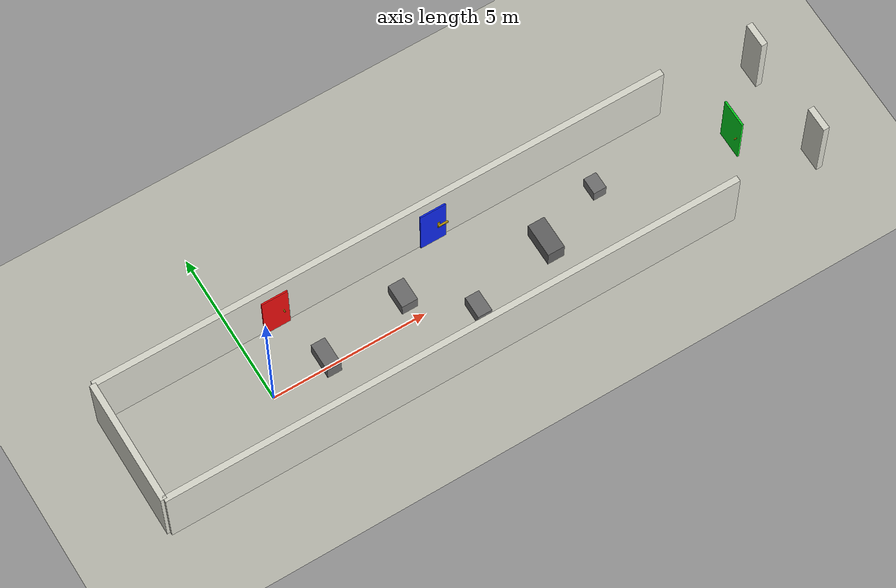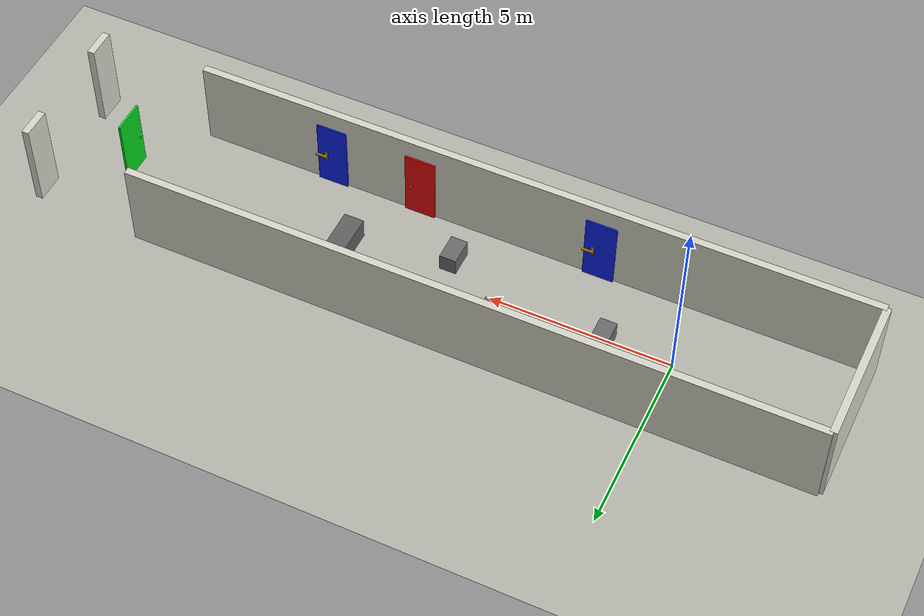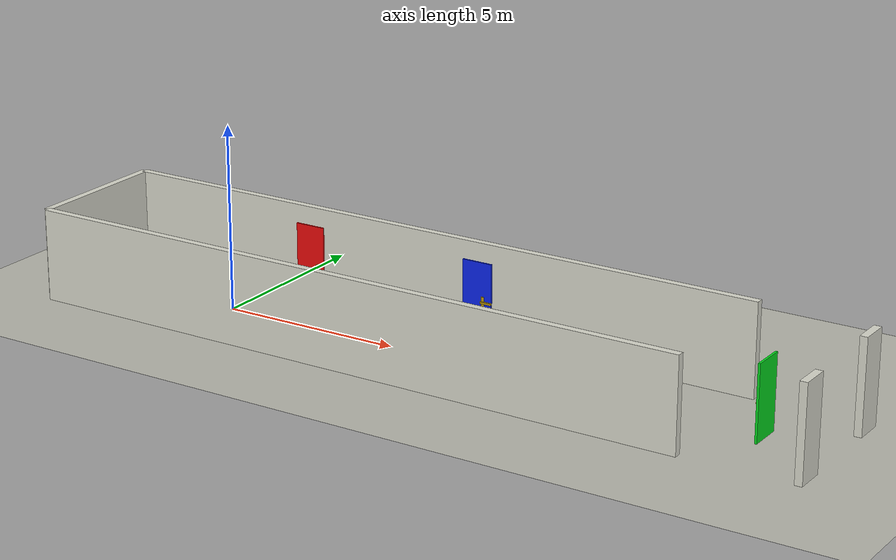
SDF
<?xml version="1.0" ?>
<sdf version="1.6">
  <world name="fire_corridor_observation_stress">
    <physics name="default_physics" type="ode">
      <max_step_size>0.001</max_step_size>
      <real_time_update_rate>1000</real_time_update_rate>
    </physics>
    <plugin name="gz::sim::systems::Physics" filename="gz-sim-physics-system"/>
    <plugin name="gz::sim::systems::UserCommands" filename="gz-sim-user-commands-system"/>
    <plugin name="gz::sim::systems::SceneBroadcaster" filename="gz-sim-scene-broadcaster-system"/>
    <plugin name="gz::sim::systems::Sensors" filename="gz-sim-sensors-system">
      <render_engine>ogre2</render_engine>
    </plugin>

    <light type="directional" name="sun">
      <cast_shadows>true</cast_shadows>
      <pose>5 0 10 0 0 0</pose>
      <diffuse>0.9 0.9 0.9 1</diffuse>
      <specular>0.3 0.3 0.3 1</specular>
      <direction>-0.5 0.1 -1</direction>
    </light>
    <light type="point" name="light_mid">
      <pose>7.2 0 2.8 0 0 0</pose>
      <diffuse>0.8 0.8 0.8 1</diffuse>
      <specular>0.1 0.1 0.1 1</specular>
      <attenuation>
        <range>14</range>
        <linear>0.05</linear>
      </attenuation>
    </light>

    <model name="ground_plane">
      <static>true</static>
      <link name="link">
        <collision name="col">
          <geometry><plane><normal>0 0 1</normal><size>42 10</size></plane></geometry>
        </collision>
        <visual name="vis">
          <geometry><plane><normal>0 0 1</normal><size>42 10</size></plane></geometry>
          <material>
            <ambient>0.72 0.72 0.68 1</ambient>
            <diffuse>0.72 0.72 0.68 1</diffuse>
          </material>
        </visual>
      </link>
    </model>

    <model name="wall_south">
      <static>true</static>
      <pose>4.85 -2.00 1.25 0 0 0</pose>
      <link name="link">
        <collision name="col"><geometry><box><size>18.700 0.200 2.500</size></box></geometry></collision>
        <visual name="vis">
          <geometry><box><size>18.700 0.200 2.500</size></box></geometry>
          <material><ambient>0.85 0.85 0.80 1</ambient><diffuse>0.85 0.85 0.80 1</diffuse></material>
        </visual>
      </link>
    </model>
    <model name="wall_north">
      <static>true</static>
      <pose>4.85 2.00 1.25 0 0 0</pose>
      <link name="link">
        <collision name="col"><geometry><box><size>18.700 0.200 2.500</size></box></geometry></collision>
        <visual name="vis">
          <geometry><box><size>18.700 0.200 2.500</size></box></geometry>
          <material><ambient>0.85 0.85 0.80 1</ambient><diffuse>0.85 0.85 0.80 1</diffuse></material>
        </visual>
      </link>
    </model>
    <model name="wall_west">
      <static>true</static>
      <pose>-4.50 0.00 1.25 0 0 0</pose>
      <link name="link">
        <collision name="col"><geometry><box><size>0.200 4.000 2.500</size></box></geometry></collision>
        <visual name="vis">
          <geometry><box><size>0.200 4.000 2.500</size></box></geometry>
          <material><ambient>0.85 0.85 0.80 1</ambient><diffuse>0.85 0.85 0.80 1</diffuse></material>
        </visual>
      </link>
    </model>
    <model name="wall_east_upper">
      <static>true</static>
      <pose>17.20 1.60 1.25 0 0 0</pose>
      <link name="link">
        <collision name="col"><geometry><box><size>0.200 0.800 2.500</size></box></geometry></collision>
        <visual name="vis">
          <geometry><box><size>0.200 0.800 2.500</size></box></geometry>
          <material><ambient>0.85 0.85 0.80 1</ambient><diffuse>0.85 0.85 0.80 1</diffuse></material>
        </visual>
      </link>
    </model>
    <model name="wall_east_lower">
      <static>true</static>
      <pose>17.20 -1.60 1.25 0 0 0</pose>
      <link name="link">
        <collision name="col"><geometry><box><size>0.200 0.800 2.500</size></box></geometry></collision>
        <visual name="vis">
          <geometry><box><size>0.200 0.800 2.500</size></box></geometry>
          <material><ambient>0.85 0.85 0.80 1</ambient><diffuse>0.85 0.85 0.80 1</diffuse></material>
        </visual>
      </link>
    </model>

    <model name="door_red_quick">
      <static>true</static>
      <pose>1.20 1.86 1.0 0 0 0</pose>
      <link name="link">
        <visual name="panel">
          <geometry><box><size>0.85 0.045 2.0</size></box></geometry>
          <material><ambient>0.92 0.04 0.04 1</ambient><diffuse>0.92 0.04 0.04 1</diffuse></material>
        </visual>
      </link>
    </model>
    <model name="handle_red_quick">
      <static>true</static>
      <pose>1.44 1.82 0.95 1.5708 0 0</pose>
      <link name="link">
        <visual name="handle">
          <geometry><cylinder><radius>0.018</radius><length>0.13</length></cylinder></geometry>
          <material><ambient>0.75 0.60 0.05 1</ambient><diffuse>0.75 0.60 0.05 1</diffuse></material>
        </visual>
      </link>
    </model>

    <model name="door_blue_quick1">
      <static>false</static>
      <pose>2.80 -1.86 1 0 0 0</pose>
      <link name="panel">
        <inertial>
          <mass>2.0</mass>
          <inertia>
            <ixx>0.90</ixx><ixy>0</ixy><ixz>0</ixz>
            <iyy>0.90</iyy><iyz>0</iyz><izz>0.12</izz>
          </inertia>
        </inertial>
        <collision name="panel_collision">
          <geometry><box><size>0.85 0.045 2</size></box></geometry>
          <surface><friction><ode><mu>0.8</mu><mu2>0.8</mu2></ode></friction></surface>
        </collision>
        <visual name="panel">
          <geometry><box><size>0.85 0.045 2</size></box></geometry>
          <material><ambient>0.04 0.14 0.92 1</ambient><diffuse>0.04 0.14 0.92 1</diffuse></material>
        </visual>
        <collision name="handle_collision">
<pose>0.3 0.074 -0.05 0 0 0</pose>
<geometry><box><size>0.32 0.07 0.055</size></box></geometry>
        </collision>
        <visual name="handle_backplate">
<pose>0.18 0.032 -0.05 0 0 0</pose>
<geometry><box><size>0.08 0.022 0.28</size></box></geometry>
<material><ambient>0.75 0.60 0.05 1</ambient><diffuse>0.75 0.60 0.05 1</diffuse></material>
        </visual>
        <visual name="handle">
<pose>0.3 0.078 -0.05 0 0 0</pose>
<geometry><box><size>0.32 0.052 0.052</size></box></geometry>
<material><ambient>0.75 0.60 0.05 1</ambient><diffuse>0.75 0.60 0.05 1</diffuse></material>
        </visual>
      </link>
      <joint name="hinge" type="revolute">
        <pose>-0.425 0 0 0 0 0</pose>
        <parent>world</parent>
        <child>panel</child>
        <axis>
          <xyz>0 0 1</xyz>
          <limit><lower>-2.10</lower><upper>2.10</upper><effort>40</effort><velocity>1.5</velocity></limit>
          <dynamics><damping>1.0</damping><friction>0.05</friction></dynamics>
        </axis>
      </joint>
      <plugin filename="ignition-gazebo-joint-position-controller-system"
              name="gz::sim::systems::JointPositionController">
        <joint_name>hinge</joint_name>
        <topic>/fire_robot/door/blue/x280/yn186/sp/cmd</topic>
        <p_gain>8.0</p_gain>
        <d_gain>0.4</d_gain>
        <cmd_max>60</cmd_max>
        <cmd_min>-60</cmd_min>
      </plugin>
    </model>

    <model name="door_blue_quick2">
      <static>false</static>
      <pose>6.40 1.86 1 0 0 0</pose>
      <link name="panel">
        <inertial>
          <mass>2.0</mass>
          <inertia>
            <ixx>0.90</ixx><ixy>0</ixy><ixz>0</ixz>
            <iyy>0.90</iyy><iyz>0</iyz><izz>0.12</izz>
          </inertia>
        </inertial>
        <collision name="panel_collision">
          <geometry><box><size>0.85 0.045 2</size></box></geometry>
          <surface><friction><ode><mu>0.8</mu><mu2>0.8</mu2></ode></friction></surface>
        </collision>
        <visual name="panel">
          <geometry><box><size>0.85 0.045 2</size></box></geometry>
          <material><ambient>0.04 0.14 0.92 1</ambient><diffuse>0.04 0.14 0.92 1</diffuse></material>
        </visual>
        <collision name="handle_collision">
<pose>0.3 -0.074 -0.05 0 0 0</pose>
<geometry><box><size>0.32 0.07 0.055</size></box></geometry>
        </collision>
        <visual name="handle_backplate">
<pose>0.18 -0.032 -0.05 0 0 0</pose>
<geometry><box><size>0.08 0.022 0.28</size></box></geometry>
<material><ambient>0.75 0.60 0.05 1</ambient><diffuse>0.75 0.60 0.05 1</diffuse></material>
        </visual>
        <visual name="handle">
<pose>0.3 -0.078 -0.05 0 0 0</pose>
<geometry><box><size>0.32 0.052 0.052</size></box></geometry>
<material><ambient>0.75 0.60 0.05 1</ambient><diffuse>0.75 0.60 0.05 1</diffuse></material>
        </visual>
      </link>
      <joint name="hinge" type="revolute">
        <pose>-0.425 0 0 0 0 0</pose>
        <parent>world</parent>
        <child>panel</child>
        <axis>
          <xyz>0 0 1</xyz>
          <limit><lower>-2.10</lower><upper>2.10</upper><effort>40</effort><velocity>1.5</velocity></limit>
          <dynamics><damping>1.0</damping><friction>0.05</friction></dynamics>
        </axis>
      </joint>
      <plugin filename="ignition-gazebo-joint-position-controller-system"
              name="gz::sim::systems::JointPositionController">
        <joint_name>hinge</joint_name>
        <topic>/fire_robot/door/blue/x640/yp186/sn/cmd</topic>
        <p_gain>8.0</p_gain>
        <d_gain>0.4</d_gain>
        <cmd_max>60</cmd_max>
        <cmd_min>-60</cmd_min>
      </plugin>
    </model>

    <model name="door_red_quick2">
      <static>true</static>
      <pose>7.85 -1.86 1.0 0 0 0</pose>
      <link name="link">
        <visual name="panel">
          <geometry><box><size>0.85 0.045 2.0</size></box></geometry>
          <material><ambient>0.92 0.04 0.04 1</ambient><diffuse>0.92 0.04 0.04 1</diffuse></material>
        </visual>
      </link>
    </model>
    <model name="handle_red_quick2">
      <static>true</static>
      <pose>8.09 -1.82 0.95 1.5708 0 0</pose>
      <link name="link">
        <visual name="handle">
          <geometry><cylinder><radius>0.018</radius><length>0.13</length></cylinder></geometry>
          <material><ambient>0.75 0.60 0.05 1</ambient><diffuse>0.75 0.60 0.05 1</diffuse></material>
        </visual>
      </link>
    </model>

    <model name="door_blue_quick3">
      <static>false</static>
      <pose>10.40 -1.86 1 0 0 0</pose>
      <link name="panel">
        <inertial>
          <mass>2.0</mass>
          <inertia>
            <ixx>0.90</ixx><ixy>0</ixy><ixz>0</ixz>
            <iyy>0.90</iyy><iyz>0</iyz><izz>0.12</izz>
          </inertia>
        </inertial>
        <collision name="panel_collision">
          <geometry><box><size>0.85 0.045 2</size></box></geometry>
          <surface><friction><ode><mu>0.8</mu><mu2>0.8</mu2></ode></friction></surface>
        </collision>
        <visual name="panel">
          <geometry><box><size>0.85 0.045 2</size></box></geometry>
          <material><ambient>0.04 0.14 0.92 1</ambient><diffuse>0.04 0.14 0.92 1</diffuse></material>
        </visual>
        <collision name="handle_collision">
<pose>0.3 0.074 -0.05 0 0 0</pose>
<geometry><box><size>0.32 0.07 0.055</size></box></geometry>
        </collision>
        <visual name="handle_backplate">
<pose>0.18 0.032 -0.05 0 0 0</pose>
<geometry><box><size>0.08 0.022 0.28</size></box></geometry>
<material><ambient>0.75 0.60 0.05 1</ambient><diffuse>0.75 0.60 0.05 1</diffuse></material>
        </visual>
        <visual name="handle">
<pose>0.3 0.078 -0.05 0 0 0</pose>
<geometry><box><size>0.32 0.052 0.052</size></box></geometry>
<material><ambient>0.75 0.60 0.05 1</ambient><diffuse>0.75 0.60 0.05 1</diffuse></material>
        </visual>
      </link>
      <joint name="hinge" type="revolute">
        <pose>-0.425 0 0 0 0 0</pose>
        <parent>world</parent>
        <child>panel</child>
        <axis>
          <xyz>0 0 1</xyz>
          <limit><lower>-2.10</lower><upper>2.10</upper><effort>40</effort><velocity>1.5</velocity></limit>
          <dynamics><damping>1.0</damping><friction>0.05</friction></dynamics>
        </axis>
      </joint>
      <plugin filename="ignition-gazebo-joint-position-controller-system"
              name="gz::sim::systems::JointPositionController">
        <joint_name>hinge</joint_name>
        <topic>/fire_robot/door/blue/x1040/yn186/sp/cmd</topic>
        <p_gain>8.0</p_gain>
        <d_gain>0.4</d_gain>
        <cmd_max>60</cmd_max>
        <cmd_min>-60</cmd_min>
      </plugin>
    </model>

    <model name="exit_green">
      <static>true</static>
      <pose>15.40 0 1.0 0 0 0</pose>
      <link name="link">
        <visual name="panel">
          <geometry><box><size>0.06 0.9 2.0</size></box></geometry>
          <material><ambient>0.02 0.85 0.12 1</ambient><diffuse>0.02 0.85 0.12 1</diffuse></material>
        </visual>
      </link>
    </model>
    <model name="handle_exit">
      <static>true</static>
      <pose>15.36 -0.30 0.95 0 1.5708 0</pose>
      <link name="link">
        <visual name="handle">
          <geometry><cylinder><radius>0.018</radius><length>0.13</length></cylinder></geometry>
          <material><ambient>0.75 0.60 0.05 1</ambient><diffuse>0.75 0.60 0.05 1</diffuse></material>
        </visual>
      </link>
    </model>

    <model name="quick_obs_01">
      <static>true</static>
      <pose>1.85 0.20 0.26 0 0 0</pose>
      <link name="link">
        <collision name="col"><geometry><box><size>0.46 0.92 0.52</size></box></geometry></collision>
        <visual name="vis">
          <geometry><box><size>0.46 0.92 0.52</size></box></geometry>
          <material><ambient>0.42 0.42 0.42 1</ambient><diffuse>0.42 0.42 0.42 1</diffuse></material>
        </visual>
      </link>
    </model>
    <model name="quick_obs_02">
      <static>true</static>
      <pose>4.70 0.72 0.24 0 0 0</pose>
      <link name="link">
        <collision name="col"><geometry><box><size>0.52 0.78 0.48</size></box></geometry></collision>
        <visual name="vis">
          <geometry><box><size>0.52 0.78 0.48</size></box></geometry>
          <material><ambient>0.42 0.42 0.42 1</ambient><diffuse>0.42 0.42 0.42 1</diffuse></material>
        </visual>
      </link>
    </model>
    <model name="quick_obs_03">
      <static>true</static>
      <pose>6.35 -0.72 0.25 0 0 0</pose>
      <link name="link">
        <collision name="col"><geometry><box><size>0.46 0.72 0.50</size></box></geometry></collision>
        <visual name="vis">
          <geometry><box><size>0.46 0.72 0.50</size></box></geometry>
          <material><ambient>0.42 0.42 0.42 1</ambient><diffuse>0.42 0.42 0.42 1</diffuse></material>
        </visual>
      </link>
    </model>
    <model name="quick_obs_04">
      <static>true</static>
      <pose>9.10 0.05 0.30 0 0 0</pose>
      <link name="link">
        <collision name="col"><geometry><box><size>0.55 1.10 0.60</size></box></geometry></collision>
        <visual name="vis">
          <geometry><box><size>0.55 1.10 0.60</size></box></geometry>
          <material><ambient>0.38 0.38 0.38 1</ambient><diffuse>0.38 0.38 0.38 1</diffuse></material>
        </visual>
      </link>
    </model>
    <model name="quick_obs_05">
      <static>true</static>
      <pose>11.25 0.82 0.22 0 0 0</pose>
      <link name="link">
        <collision name="col"><geometry><box><size>0.42 0.56 0.44</size></box></geometry></collision>
        <visual name="vis">
          <geometry><box><size>0.42 0.56 0.44</size></box></geometry>
          <material><ambient>0.44 0.44 0.44 1</ambient><diffuse>0.44 0.44 0.44 1</diffuse></material>
        </visual>
      </link>
    </model>
  </world>
</sdf>
